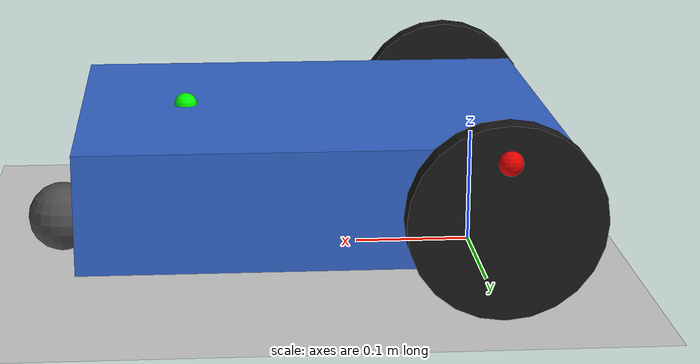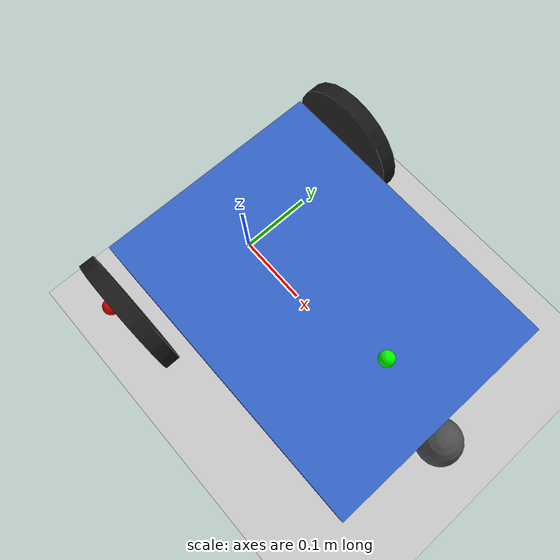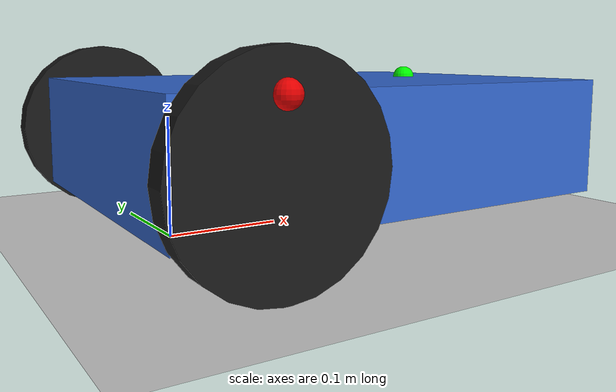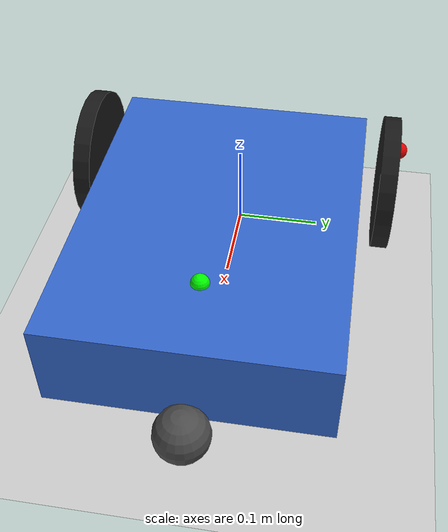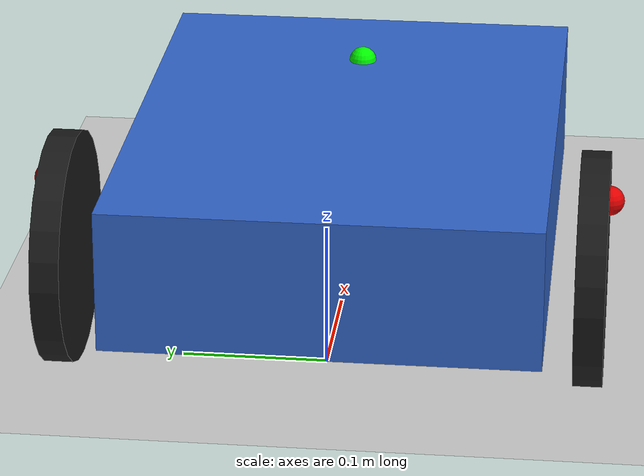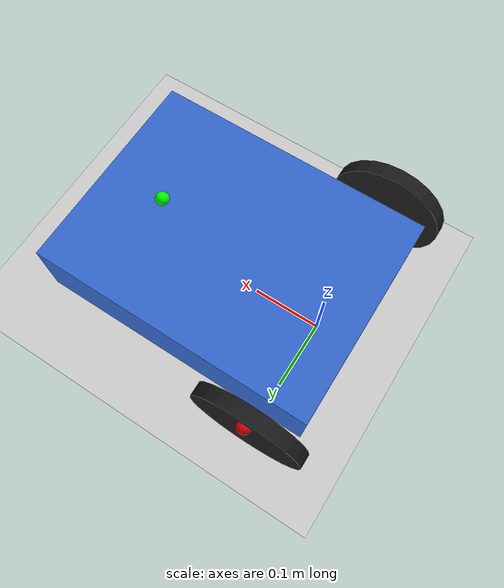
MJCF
<mujoco model="diff_drive">
  <option timestep="0.002" gravity="0 0 -9.81" integrator="RK4"/>
  <compiler angle="radian" inertiafromgeom="true"/>

  <default>
    <joint damping="0.05" limited="false" armature="0.002"/>
    <geom solimp="0.9 0.95 0.001" solref="0.005 1" condim="3" density="700"/>
    <motor ctrllimited="true" ctrlrange="-2 2"/>
  </default>

  <asset>
    <texture name="grid" type="2d" builtin="checker" width="512" height="512"
             rgb1="0.9 0.9 0.9" rgb2="0.7 0.7 0.7"/>
    <material name="ground_mat" texture="grid" texrepeat="12 12" reflectance="0.2"/>
  </asset>

  <worldbody>
    <geom name="ground" type="plane" size="20 20 0.1" material="ground_mat"
          friction="20.0 0.0 0.0" contype="1" conaffinity="1"/>

    <geom name="target" type="plane" pos="1 0 0.001" size="0.05 0.05 0.001" rgba="0 1 0 0.5"
          friction="0.00 0.00 0.00" contype="0" conaffinity="0"/>

    <!-- Base height so wheels touch ground; chassis clears it -->
    <body name="base" pos="0 0 0.079">
  <joint name="x"   type="slide" axis="1 0 0"/>
  <joint name="y"   type="slide" axis="0 1 0"/>
  <joint name="yaw" type="hinge" axis="0 0 1"/>

      <!-- Shift chassis slightly forward to bias COM ahead of axle -->
      <geom name="chassis" type="box" pos="0.14 0 0" size="0.20 0.15 0.05"
            rgba="0.2 0.4 0.8 1" friction="0.8 0.01 0.001" contype="1" conaffinity="1"/>

      <!-- Wheels: axle = +Y, radius=0.06 -->
      <body name="left_wheel" pos="0 0.18 0.0">
        <joint name="left_hinge" type="hinge" axis="0 1 0" damping="0.1" frictionloss="0.1"/>
        <geom name="left_wheel_geom" type="cylinder"
              fromto="0 -0.01 0  0 0.01 0" size="0.08"
              rgba="0.1 0.1 0.1 1" friction="1.0 0.0 0.0" contype="1" conaffinity="1"/>
        <geom name="left_marker" type="sphere" size="0.01" pos="0 0.01 0.05"
              rgba="0.9 0.0 0.0 1"
              friction="0.00 0.00 0.00" contype="0" conaffinity="0"/>
      </body>

      <body name="right_wheel" pos="0 -0.18 0.0">
        <joint name="right_hinge" type="hinge" axis="0 1 0" damping="0.1" frictionloss="0.1"/>
        <geom name="right_wheel_geom" type="cylinder"
              fromto="0 -0.01 0  0 0.01 0" size="0.08"
              rgba="0.1 0.1 0.1 1" friction="1.0 0.0 0.0" contype="1" conaffinity="1"/>
        <geom name="right_marker" type="sphere" size="0.01" pos="0 -0.01 0.05"
              rgba="0.9 0.0 0.0 1"
              friction="0.00 0.00 0.00" contype="0" conaffinity="0"/>
      </body>

      <!-- Passive rear caster: tiny ball just touching ground -->
      <body name="caster" pos="0.36 0 -0.05">
        <!-- No joint -> rigidly attached to base -->
        <geom name="caster_ball" type="sphere" size="0.03"
              rgba="0.3 0.3 0.3 1"
              friction="0.00 0.00 0.00" contype="1" conaffinity="1"/>
      </body>

      <site name="base_com" pos="0 0 0" size="0.01" rgba="1 0 0 1"/>
      <site name="forward_dir" pos="0.25 0 0.05" size="0.01" rgba="0 1 0 1"/>
    </body>
  </worldbody>

  <actuator>
    <velocity name="left_vel"  joint="left_hinge"  kv="5" ctrlrange="-30 30"/>
    <velocity name="right_vel" joint="right_hinge" kv="5" ctrlrange="-30 30"/>
  </actuator>
</mujoco>
